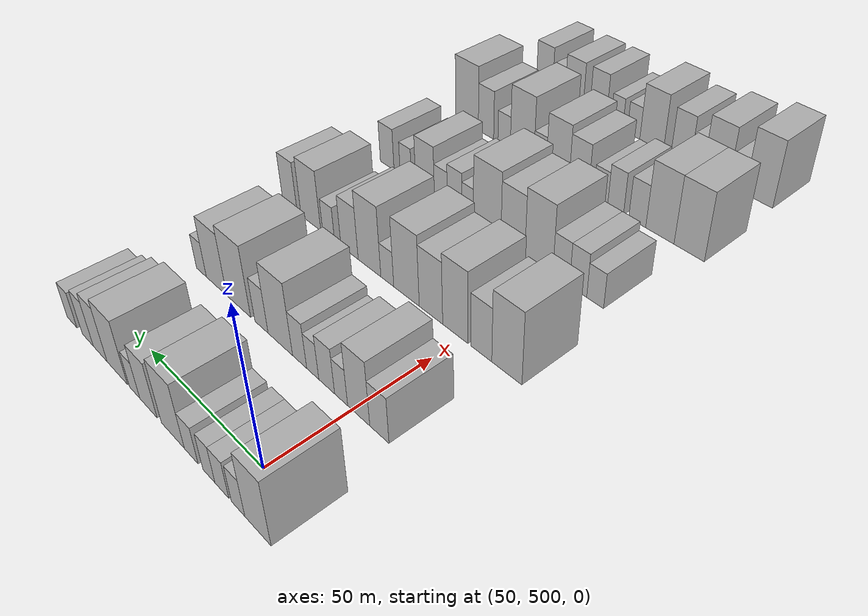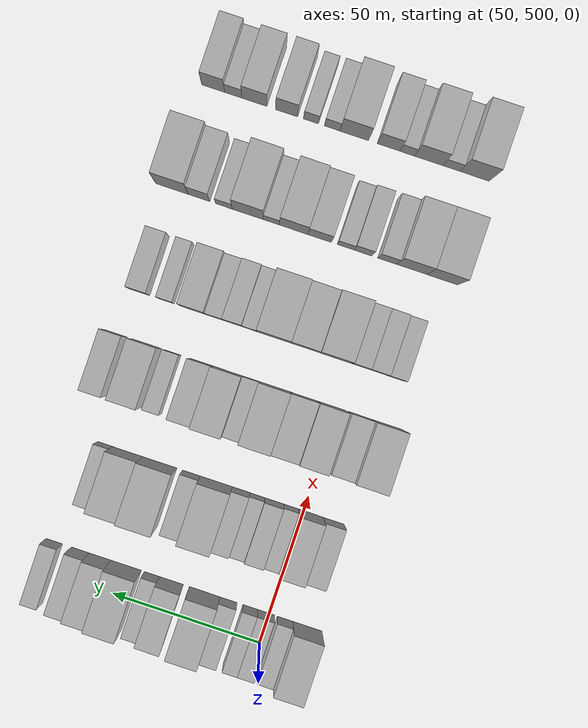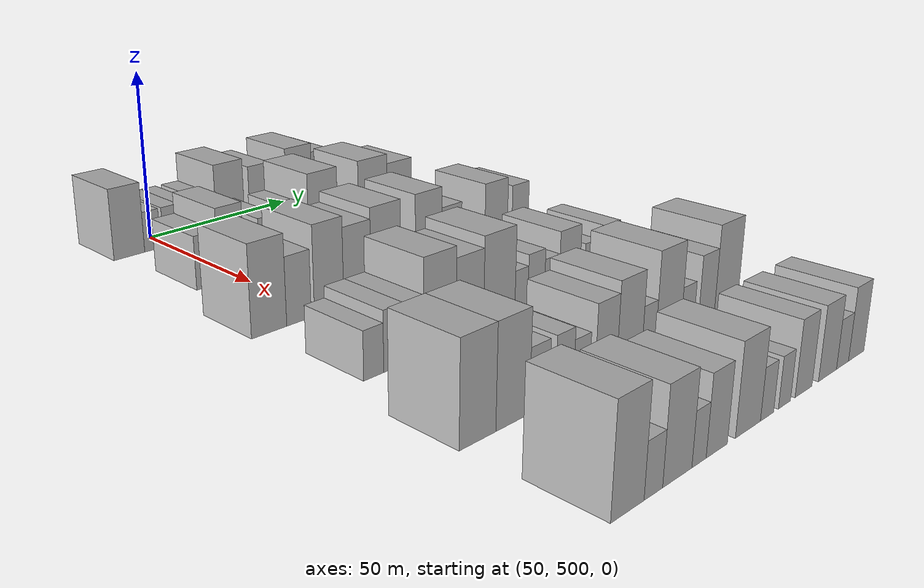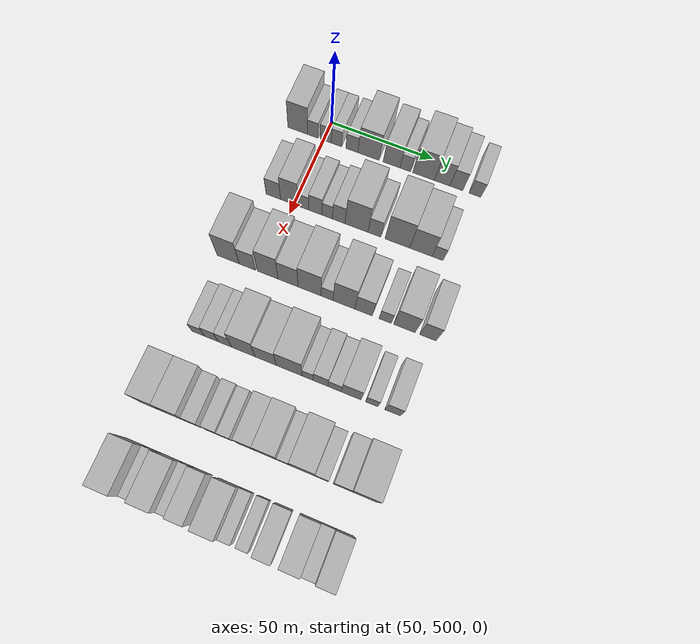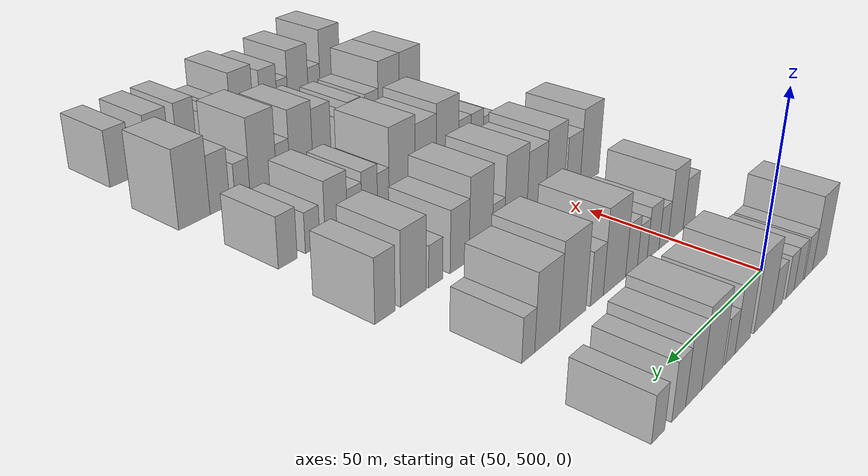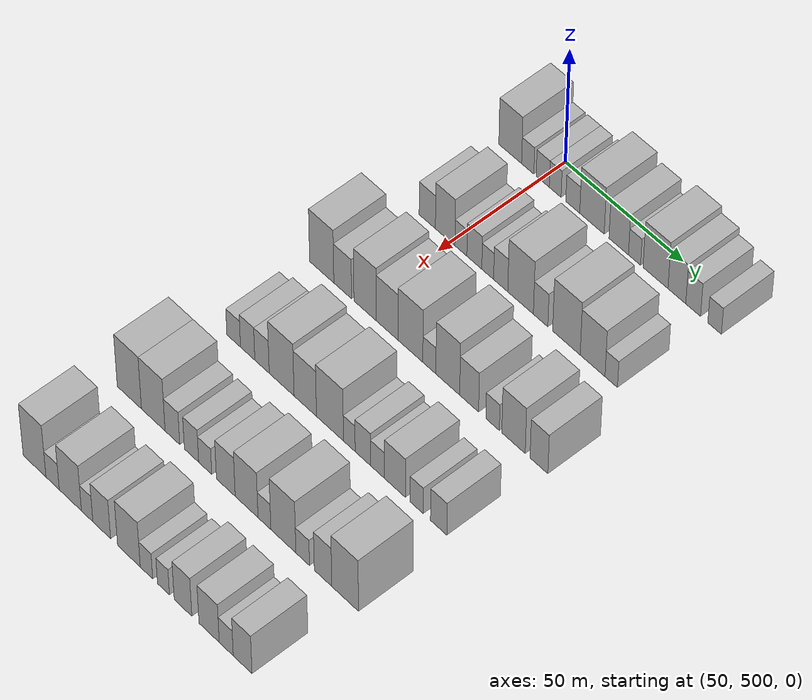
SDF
<sdf version="1.6">
 <world name="default">
  <model name="building_117">
   <static>1</static>
   <pose>50.0000 487.1046 0 0.000000 0.000000 0.000000</pose>
   <link name="link">
    <pose>0 0 10.50 0 0 0</pose>
    <collision name="collision"><geometry><box><size>20.0000 9.8436 21.0000</size></box></geometry></collision>
    <visual name="visual">
     <cast_shadows>0</cast_shadows>
     <geometry><box><size>20.0000 9.8436 21.0000</size></box></geometry>
     <material>
      <script>
       <uri>model://HANNAS_wall/materials/scripts</uri>
       <uri>model://HANNAS_wall/materials/textures</uri>
       <name>vrc/HANNAS_wall</name>
      </script>
     </material>
    </visual>
   </link>
  </model>
  <model name="building_118">
   <static>1</static>
   <pose>50.0000 494.6724 0 0.000000 0.000000 0.000000</pose>
   <link name="link">
    <pose>0 0 6.00 0 0 0</pose>
    <collision name="collision"><geometry><box><size>20.0000 5.2920 12.0000</size></box></geometry></collision>
    <visual name="visual">
     <cast_shadows>0</cast_shadows>
     <geometry><box><size>20.0000 5.2920 12.0000</size></box></geometry>
     <material>
      <script>
       <uri>model://HANNAS_wall/materials/scripts</uri>
       <uri>model://HANNAS_wall/materials/textures</uri>
       <name>vrc/HANNAS_wall</name>
      </script>
     </material>
    </visual>
   </link>
  </model>
  <model name="building_119">
   <static>1</static>
   <pose>50.0000 501.1175 0 0.000000 0.000000 0.000000</pose>
   <link name="link">
    <pose>0 0 6.00 0 0 0</pose>
    <collision name="collision"><geometry><box><size>20.0000 5.5981 12.0000</size></box></geometry></collision>
    <visual name="visual">
     <cast_shadows>0</cast_shadows>
     <geometry><box><size>20.0000 5.5981 12.0000</size></box></geometry>
     <material>
      <script>
       <uri>model://HANNAS_wall/materials/scripts</uri>
       <uri>model://HANNAS_wall/materials/textures</uri>
       <name>vrc/HANNAS_wall</name>
      </script>
     </material>
    </visual>
   </link>
  </model>
  <model name="building_120">
   <static>1</static>
   <pose>50.0000 506.4520 0 0.000000 0.000000 0.000000</pose>
   <link name="link">
    <pose>0 0 6.00 0 0 0</pose>
    <collision name="collision"><geometry><box><size>20.0000 5.0708 12.0000</size></box></geometry></collision>
    <visual name="visual">
     <cast_shadows>0</cast_shadows>
     <geometry><box><size>20.0000 5.0708 12.0000</size></box></geometry>
     <material>
      <script>
       <uri>model://HANNAS_wall/materials/scripts</uri>
       <uri>model://HANNAS_wall/materials/textures</uri>
       <name>vrc/HANNAS_wall</name>
      </script>
     </material>
    </visual>
   </link>
  </model>
  <model name="building_121">
   <static>1</static>
   <pose>50.0000 513.9462 0 0.000000 0.000000 0.000000</pose>
   <link name="link">
    <pose>0 0 6.00 0 0 0</pose>
    <collision name="collision"><geometry><box><size>20.0000 5.9178 12.0000</size></box></geometry></collision>
    <visual name="visual">
     <cast_shadows>0</cast_shadows>
     <geometry><box><size>20.0000 5.9178 12.0000</size></box></geometry>
     <material>
      <script>
       <uri>model://HANNAS_wall/materials/scripts</uri>
       <uri>model://HANNAS_wall/materials/textures</uri>
       <name>vrc/HANNAS_wall</name>
      </script>
     </material>
    </visual>
   </link>
  </model>
  <model name="building_122">
   <static>1</static>
   <pose>50.0000 522.0993 0 0.000000 0.000000 0.000000</pose>
   <link name="link">
    <pose>0 0 10.50 0 0 0</pose>
    <collision name="collision"><geometry><box><size>20.0000 10.3884 21.0000</size></box></geometry></collision>
    <visual name="visual">
     <cast_shadows>0</cast_shadows>
     <geometry><box><size>20.0000 10.3884 21.0000</size></box></geometry>
     <material>
      <script>
       <uri>model://HANNAS_wall/materials/scripts</uri>
       <uri>model://HANNAS_wall/materials/textures</uri>
       <name>vrc/HANNAS_wall</name>
      </script>
     </material>
    </visual>
   </link>
  </model>
  <model name="building_123">
   <static>1</static>
   <pose>50.0000 533.3884 0 0.000000 0.000000 0.000000</pose>
   <link name="link">
    <pose>0 0 9.00 0 0 0</pose>
    <collision name="collision"><geometry><box><size>20.0000 8.1897 18.0000</size></box></geometry></collision>
    <visual name="visual">
     <cast_shadows>0</cast_shadows>
     <geometry><box><size>20.0000 8.1897 18.0000</size></box></geometry>
     <material>
      <script>
       <uri>model://HANNAS_wall/materials/scripts</uri>
       <uri>model://HANNAS_wall/materials/textures</uri>
       <name>vrc/HANNAS_wall</name>
      </script>
     </material>
    </visual>
   </link>
  </model>
  <model name="building_124">
   <static>1</static>
   <pose>50.0000 540.0337 0 0.000000 0.000000 0.000000</pose>
   <link name="link">
    <pose>0 0 6.00 0 0 0</pose>
    <collision name="collision"><geometry><box><size>20.0000 5.1009 12.0000</size></box></geometry></collision>
    <visual name="visual">
     <cast_shadows>0</cast_shadows>
     <geometry><box><size>20.0000 5.1009 12.0000</size></box></geometry>
     <material>
      <script>
       <uri>model://HANNAS_wall/materials/scripts</uri>
       <uri>model://HANNAS_wall/materials/textures</uri>
       <name>vrc/HANNAS_wall</name>
      </script>
     </material>
    </visual>
   </link>
  </model>
  <model name="building_125">
   <static>1</static>
   <pose>50.0000 548.7933 0 0.000000 0.000000 0.000000</pose>
   <link name="link">
    <pose>0 0 10.50 0 0 0</pose>
    <collision name="collision"><geometry><box><size>20.0000 10.4184 21.0000</size></box></geometry></collision>
    <visual name="visual">
     <cast_shadows>0</cast_shadows>
     <geometry><box><size>20.0000 10.4184 21.0000</size></box></geometry>
     <material>
      <script>
       <uri>model://HANNAS_wall/materials/scripts</uri>
       <uri>model://HANNAS_wall/materials/textures</uri>
       <name>vrc/HANNAS_wall</name>
      </script>
     </material>
    </visual>
   </link>
  </model>
  <model name="building_126">
   <static>1</static>
   <pose>50.0000 557.6848 0 0.000000 0.000000 0.000000</pose>
   <link name="link">
    <pose>0 0 9.00 0 0 0</pose>
    <collision name="collision"><geometry><box><size>20.0000 7.3644 18.0000</size></box></geometry></collision>
    <visual name="visual">
     <cast_shadows>0</cast_shadows>
     <geometry><box><size>20.0000 7.3644 18.0000</size></box></geometry>
     <material>
      <script>
       <uri>model://HANNAS_wall/materials/scripts</uri>
       <uri>model://HANNAS_wall/materials/textures</uri>
       <name>vrc/HANNAS_wall</name>
      </script>
     </material>
    </visual>
   </link>
  </model>
  <model name="building_127">
   <static>1</static>
   <pose>50.0000 564.4139 0 0.000000 0.000000 0.000000</pose>
   <link name="link">
    <pose>0 0 7.50 0 0 0</pose>
    <collision name="collision"><geometry><box><size>20.0000 6.0938 15.0000</size></box></geometry></collision>
    <visual name="visual">
     <cast_shadows>0</cast_shadows>
     <geometry><box><size>20.0000 6.0938 15.0000</size></box></geometry>
     <material>
      <script>
       <uri>model://HANNAS_wall/materials/scripts</uri>
       <uri>model://HANNAS_wall/materials/textures</uri>
       <name>vrc/HANNAS_wall</name>
      </script>
     </material>
    </visual>
   </link>
  </model>
  <model name="building_128">
   <static>1</static>
   <pose>50.0000 573.2463 0 0.000000 0.000000 0.000000</pose>
   <link name="link">
    <pose>0 0 6.00 0 0 0</pose>
    <collision name="collision"><geometry><box><size>20.0000 5.5709 12.0000</size></box></geometry></collision>
    <visual name="visual">
     <cast_shadows>0</cast_shadows>
     <geometry><box><size>20.0000 5.5709 12.0000</size></box></geometry>
     <material>
      <script>
       <uri>model://HANNAS_wall/materials/scripts</uri>
       <uri>model://HANNAS_wall/materials/textures</uri>
       <name>vrc/HANNAS_wall</name>
      </script>
     </material>
    </visual>
   </link>
  </model>
  <model name="building_245">
   <static>1</static>
   <pose>85.0000 489.8975 0 0.000000 0.000000 0.000000</pose>
   <link name="link">
    <pose>0 0 7.50 0 0 0</pose>
    <collision name="collision"><geometry><box><size>20.0000 7.0460 15.0000</size></box></geometry></collision>
    <visual name="visual">
     <cast_shadows>0</cast_shadows>
     <geometry><box><size>20.0000 7.0460 15.0000</size></box></geometry>
     <material>
      <script>
       <uri>model://HANNAS_wall/materials/scripts</uri>
       <uri>model://HANNAS_wall/materials/textures</uri>
       <name>vrc/HANNAS_wall</name>
      </script>
     </material>
    </visual>
   </link>
  </model>
  <model name="building_246">
   <static>1</static>
   <pose>85.0000 497.6283 0 0.000000 0.000000 0.000000</pose>
   <link name="link">
    <pose>0 0 10.50 0 0 0</pose>
    <collision name="collision"><geometry><box><size>20.0000 8.4156 21.0000</size></box></geometry></collision>
    <visual name="visual">
     <cast_shadows>0</cast_shadows>
     <geometry><box><size>20.0000 8.4156 21.0000</size></box></geometry>
     <material>
      <script>
       <uri>model://HANNAS_wall/materials/scripts</uri>
       <uri>model://HANNAS_wall/materials/textures</uri>
       <name>vrc/HANNAS_wall</name>
      </script>
     </material>
    </visual>
   </link>
  </model>
  <model name="building_247">
   <static>1</static>
   <pose>85.0000 504.3909 0 0.000000 0.000000 0.000000</pose>
   <link name="link">
    <pose>0 0 6.00 0 0 0</pose>
    <collision name="collision"><geometry><box><size>20.0000 5.1095 12.0000</size></box></geometry></collision>
    <visual name="visual">
     <cast_shadows>0</cast_shadows>
     <geometry><box><size>20.0000 5.1095 12.0000</size></box></geometry>
     <material>
      <script>
       <uri>model://HANNAS_wall/materials/scripts</uri>
       <uri>model://HANNAS_wall/materials/textures</uri>
       <name>vrc/HANNAS_wall</name>
      </script>
     </material>
    </visual>
   </link>
  </model>
  <model name="building_248">
   <static>1</static>
   <pose>85.0000 510.1409 0 0.000000 0.000000 0.000000</pose>
   <link name="link">
    <pose>0 0 7.50 0 0 0</pose>
    <collision name="collision"><geometry><box><size>20.0000 6.3905 15.0000</size></box></geometry></collision>
    <visual name="visual">
     <cast_shadows>0</cast_shadows>
     <geometry><box><size>20.0000 6.3905 15.0000</size></box></geometry>
     <material>
      <script>
       <uri>model://HANNAS_wall/materials/scripts</uri>
       <uri>model://HANNAS_wall/materials/textures</uri>
       <name>vrc/HANNAS_wall</name>
      </script>
     </material>
    </visual>
   </link>
  </model>
  <model name="building_249">
   <static>1</static>
   <pose>85.0000 515.8552 0 0.000000 0.000000 0.000000</pose>
   <link name="link">
    <pose>0 0 6.00 0 0 0</pose>
    <collision name="collision"><geometry><box><size>20.0000 5.0382 12.0000</size></box></geometry></collision>
    <visual name="visual">
     <cast_shadows>0</cast_shadows>
     <geometry><box><size>20.0000 5.0382 12.0000</size></box></geometry>
     <material>
      <script>
       <uri>model://HANNAS_wall/materials/scripts</uri>
       <uri>model://HANNAS_wall/materials/textures</uri>
       <name>vrc/HANNAS_wall</name>
      </script>
     </material>
    </visual>
   </link>
  </model>
  <model name="building_250">
   <static>1</static>
   <pose>85.0000 521.3757 0 0.000000 0.000000 0.000000</pose>
   <link name="link">
    <pose>0 0 7.50 0 0 0</pose>
    <collision name="collision"><geometry><box><size>20.0000 6.0028 15.0000</size></box></geometry></collision>
    <visual name="visual">
     <cast_shadows>0</cast_shadows>
     <geometry><box><size>20.0000 6.0028 15.0000</size></box></geometry>
     <material>
      <script>
       <uri>model://HANNAS_wall/materials/scripts</uri>
       <uri>model://HANNAS_wall/materials/textures</uri>
       <name>vrc/HANNAS_wall</name>
      </script>
     </material>
    </visual>
   </link>
  </model>
  <model name="building_251">
   <static>1</static>
   <pose>85.0000 529.7878 0 0.000000 0.000000 0.000000</pose>
   <link name="link">
    <pose>0 0 12.00 0 0 0</pose>
    <collision name="collision"><geometry><box><size>20.0000 10.8214 24.0000</size></box></geometry></collision>
    <visual name="visual">
     <cast_shadows>0</cast_shadows>
     <geometry><box><size>20.0000 10.8214 24.0000</size></box></geometry>
     <material>
      <script>
       <uri>model://HANNAS_wall/materials/scripts</uri>
       <uri>model://HANNAS_wall/materials/textures</uri>
       <name>vrc/HANNAS_wall</name>
      </script>
     </material>
    </visual>
   </link>
  </model>
  <model name="building_252">
   <static>1</static>
   <pose>85.0000 538.2330 0 0.000000 0.000000 0.000000</pose>
   <link name="link">
    <pose>0 0 7.50 0 0 0</pose>
    <collision name="collision"><geometry><box><size>20.0000 6.0689 15.0000</size></box></geometry></collision>
    <visual name="visual">
     <cast_shadows>0</cast_shadows>
     <geometry><box><size>20.0000 6.0689 15.0000</size></box></geometry>
     <material>
      <script>
       <uri>model://HANNAS_wall/materials/scripts</uri>
       <uri>model://HANNAS_wall/materials/textures</uri>
       <name>vrc/HANNAS_wall</name>
      </script>
     </material>
    </visual>
   </link>
  </model>
  <model name="building_253">
   <static>1</static>
   <pose>85.0000 549.0140 0 0.000000 0.000000 0.000000</pose>
   <link name="link">
    <pose>0 0 12.00 0 0 0</pose>
    <collision name="collision"><geometry><box><size>20.0000 11.4932 24.0000</size></box></geometry></collision>
    <visual name="visual">
     <cast_shadows>0</cast_shadows>
     <geometry><box><size>20.0000 11.4932 24.0000</size></box></geometry>
     <material>
      <script>
       <uri>model://HANNAS_wall/materials/scripts</uri>
       <uri>model://HANNAS_wall/materials/textures</uri>
       <name>vrc/HANNAS_wall</name>
      </script>
     </material>
    </visual>
   </link>
  </model>
  <model name="building_254">
   <static>1</static>
   <pose>85.0000 559.9099 0 0.000000 0.000000 0.000000</pose>
   <link name="link">
    <pose>0 0 10.50 0 0 0</pose>
    <collision name="collision"><geometry><box><size>20.0000 10.2985 21.0000</size></box></geometry></collision>
    <visual name="visual">
     <cast_shadows>0</cast_shadows>
     <geometry><box><size>20.0000 10.2985 21.0000</size></box></geometry>
     <material>
      <script>
       <uri>model://HANNAS_wall/materials/scripts</uri>
       <uri>model://HANNAS_wall/materials/textures</uri>
       <name>vrc/HANNAS_wall</name>
      </script>
     </material>
    </visual>
   </link>
  </model>
  <model name="building_255">
   <static>1</static>
   <pose>85.0000 567.6301 0 0.000000 0.000000 0.000000</pose>
   <link name="link">
    <pose>0 0 6.00 0 0 0</pose>
    <collision name="collision"><geometry><box><size>20.0000 5.1420 12.0000</size></box></geometry></collision>
    <visual name="visual">
     <cast_shadows>0</cast_shadows>
     <geometry><box><size>20.0000 5.1420 12.0000</size></box></geometry>
     <material>
      <script>
       <uri>model://HANNAS_wall/materials/scripts</uri>
       <uri>model://HANNAS_wall/materials/textures</uri>
       <name>vrc/HANNAS_wall</name>
      </script>
     </material>
    </visual>
   </link>
  </model>
  <model name="building_368">
   <static>1</static>
   <pose>120.0000 483.6038 0 0.000000 0.000000 0.000000</pose>
   <link name="link">
    <pose>0 0 12.00 0 0 0</pose>
    <collision name="collision"><geometry><box><size>20.0000 10.5399 24.0000</size></box></geometry></collision>
    <visual name="visual">
     <cast_shadows>0</cast_shadows>
     <geometry><box><size>20.0000 10.5399 24.0000</size></box></geometry>
     <material>
      <script>
       <uri>model://HANNAS_wall/materials/scripts</uri>
       <uri>model://HANNAS_wall/materials/textures</uri>
       <name>vrc/HANNAS_wall</name>
      </script>
     </material>
    </visual>
   </link>
  </model>
  <model name="building_369">
   <static>1</static>
   <pose>120.0000 492.7199 0 0.000000 0.000000 0.000000</pose>
   <link name="link">
    <pose>0 0 9.00 0 0 0</pose>
    <collision name="collision"><geometry><box><size>20.0000 7.6924 18.0000</size></box></geometry></collision>
    <visual name="visual">
     <cast_shadows>0</cast_shadows>
     <geometry><box><size>20.0000 7.6924 18.0000</size></box></geometry>
     <material>
      <script>
       <uri>model://HANNAS_wall/materials/scripts</uri>
       <uri>model://HANNAS_wall/materials/textures</uri>
       <name>vrc/HANNAS_wall</name>
      </script>
     </material>
    </visual>
   </link>
  </model>
  <model name="building_370">
   <static>1</static>
   <pose>120.0000 502.3694 0 0.000000 0.000000 0.000000</pose>
   <link name="link">
    <pose>0 0 12.00 0 0 0</pose>
    <collision name="collision"><geometry><box><size>20.0000 9.6066 24.0000</size></box></geometry></collision>
    <visual name="visual">
     <cast_shadows>0</cast_shadows>
     <geometry><box><size>20.0000 9.6066 24.0000</size></box></geometry>
     <material>
      <script>
       <uri>model://HANNAS_wall/materials/scripts</uri>
       <uri>model://HANNAS_wall/materials/textures</uri>
       <name>vrc/HANNAS_wall</name>
      </script>
     </material>
    </visual>
   </link>
  </model>
  <model name="building_371">
   <static>1</static>
   <pose>120.0000 511.8295 0 0.000000 0.000000 0.000000</pose>
   <link name="link">
    <pose>0 0 10.50 0 0 0</pose>
    <collision name="collision"><geometry><box><size>20.0000 9.3137 21.0000</size></box></geometry></collision>
    <visual name="visual">
     <cast_shadows>0</cast_shadows>
     <geometry><box><size>20.0000 9.3137 21.0000</size></box></geometry>
     <material>
      <script>
       <uri>model://HANNAS_wall/materials/scripts</uri>
       <uri>model://HANNAS_wall/materials/textures</uri>
       <name>vrc/HANNAS_wall</name>
      </script>
     </material>
    </visual>
   </link>
  </model>
  <model name="building_372">
   <static>1</static>
   <pose>120.0000 521.7784 0 0.000000 0.000000 0.000000</pose>
   <link name="link">
    <pose>0 0 12.00 0 0 0</pose>
    <collision name="collision"><geometry><box><size>20.0000 10.5840 24.0000</size></box></geometry></collision>
    <visual name="visual">
     <cast_shadows>0</cast_shadows>
     <geometry><box><size>20.0000 10.5840 24.0000</size></box></geometry>
     <material>
      <script>
       <uri>model://HANNAS_wall/materials/scripts</uri>
       <uri>model://HANNAS_wall/materials/textures</uri>
       <name>vrc/HANNAS_wall</name>
      </script>
     </material>
    </visual>
   </link>
  </model>
  <model name="building_373">
   <static>1</static>
   <pose>120.0000 529.8355 0 0.000000 0.000000 0.000000</pose>
   <link name="link">
    <pose>0 0 6.00 0 0 0</pose>
    <collision name="collision"><geometry><box><size>20.0000 5.5303 12.0000</size></box></geometry></collision>
    <visual name="visual">
     <cast_shadows>0</cast_shadows>
     <geometry><box><size>20.0000 5.5303 12.0000</size></box></geometry>
     <material>
      <script>
       <uri>model://HANNAS_wall/materials/scripts</uri>
       <uri>model://HANNAS_wall/materials/textures</uri>
       <name>vrc/HANNAS_wall</name>
      </script>
     </material>
    </visual>
   </link>
  </model>
  <model name="building_374">
   <static>1</static>
   <pose>120.0000 537.6195 0 0.000000 0.000000 0.000000</pose>
   <link name="link">
    <pose>0 0 12.00 0 0 0</pose>
    <collision name="collision"><geometry><box><size>20.0000 10.0377 24.0000</size></box></geometry></collision>
    <visual name="visual">
     <cast_shadows>0</cast_shadows>
     <geometry><box><size>20.0000 10.0377 24.0000</size></box></geometry>
     <material>
      <script>
       <uri>model://HANNAS_wall/materials/scripts</uri>
       <uri>model://HANNAS_wall/materials/textures</uri>
       <name>vrc/HANNAS_wall</name>
      </script>
     </material>
    </visual>
   </link>
  </model>
  <model name="building_375">
   <static>1</static>
   <pose>120.0000 546.5991 0 0.000000 0.000000 0.000000</pose>
   <link name="link">
    <pose>0 0 9.00 0 0 0</pose>
    <collision name="collision"><geometry><box><size>20.0000 7.9215 18.0000</size></box></geometry></collision>
    <visual name="visual">
     <cast_shadows>0</cast_shadows>
     <geometry><box><size>20.0000 7.9215 18.0000</size></box></geometry>
     <material>
      <script>
       <uri>model://HANNAS_wall/materials/scripts</uri>
       <uri>model://HANNAS_wall/materials/textures</uri>
       <name>vrc/HANNAS_wall</name>
      </script>
     </material>
    </visual>
   </link>
  </model>
  <model name="building_376">
   <static>1</static>
   <pose>120.0000 556.3815 0 0.000000 0.000000 0.000000</pose>
   <link name="link">
    <pose>0 0 6.00 0 0 0</pose>
    <collision name="collision"><geometry><box><size>20.0000 5.6433 12.0000</size></box></geometry></collision>
    <visual name="visual">
     <cast_shadows>0</cast_shadows>
     <geometry><box><size>20.0000 5.6433 12.0000</size></box></geometry>
     <material>
      <script>
       <uri>model://HANNAS_wall/materials/scripts</uri>
       <uri>model://HANNAS_wall/materials/textures</uri>
       <name>vrc/HANNAS_wall</name>
      </script>
     </material>
    </visual>
   </link>
  </model>
  <model name="building_377">
   <static>1</static>
   <pose>120.0000 565.0505 0 0.000000 0.000000 0.000000</pose>
   <link name="link">
    <pose>0 0 10.50 0 0 0</pose>
    <collision name="collision"><geometry><box><size>20.0000 9.6947 21.0000</size></box></geometry></collision>
    <visual name="visual">
     <cast_shadows>0</cast_shadows>
     <geometry><box><size>20.0000 9.6947 21.0000</size></box></geometry>
     <material>
      <script>
       <uri>model://HANNAS_wall/materials/scripts</uri>
       <uri>model://HANNAS_wall/materials/textures</uri>
       <name>vrc/HANNAS_wall</name>
      </script>
     </material>
    </visual>
   </link>
  </model>
  <model name="building_378">
   <static>1</static>
   <pose>120.0000 575.5644 0 0.000000 0.000000 0.000000</pose>
   <link name="link">
    <pose>0 0 9.00 0 0 0</pose>
    <collision name="collision"><geometry><box><size>20.0000 7.3332 18.0000</size></box></geometry></collision>
    <visual name="visual">
     <cast_shadows>0</cast_shadows>
     <geometry><box><size>20.0000 7.3332 18.0000</size></box></geometry>
     <material>
      <script>
       <uri>model://HANNAS_wall/materials/scripts</uri>
       <uri>model://HANNAS_wall/materials/textures</uri>
       <name>vrc/HANNAS_wall</name>
      </script>
     </material>
    </visual>
   </link>
  </model>
  <model name="building_502">
   <static>1</static>
   <pose>155.0000 485.6727 0 0.000000 0.000000 0.000000</pose>
   <link name="link">
    <pose>0 0 6.00 0 0 0</pose>
    <collision name="collision"><geometry><box><size>20.0000 5.9504 12.0000</size></box></geometry></collision>
    <visual name="visual">
     <cast_shadows>0</cast_shadows>
     <geometry><box><size>20.0000 5.9504 12.0000</size></box></geometry>
     <material>
      <script>
       <uri>model://HANNAS_wall/materials/scripts</uri>
       <uri>model://HANNAS_wall/materials/textures</uri>
       <name>vrc/HANNAS_wall</name>
      </script>
     </material>
    </visual>
   </link>
  </model>
  <model name="building_503">
   <static>1</static>
   <pose>155.0000 491.7644 0 0.000000 0.000000 0.000000</pose>
   <link name="link">
    <pose>0 0 7.50 0 0 0</pose>
    <collision name="collision"><geometry><box><size>20.0000 6.2330 15.0000</size></box></geometry></collision>
    <visual name="visual">
     <cast_shadows>0</cast_shadows>
     <geometry><box><size>20.0000 6.2330 15.0000</size></box></geometry>
     <material>
      <script>
       <uri>model://HANNAS_wall/materials/scripts</uri>
       <uri>model://HANNAS_wall/materials/textures</uri>
       <name>vrc/HANNAS_wall</name>
      </script>
     </material>
    </visual>
   </link>
  </model>
  <model name="building_504">
   <static>1</static>
   <pose>155.0000 498.0002 0 0.000000 0.000000 0.000000</pose>
   <link name="link">
    <pose>0 0 7.50 0 0 0</pose>
    <collision name="collision"><geometry><box><size>20.0000 6.2387 15.0000</size></box></geometry></collision>
    <visual name="visual">
     <cast_shadows>0</cast_shadows>
     <geometry><box><size>20.0000 6.2387 15.0000</size></box></geometry>
     <material>
      <script>
       <uri>model://HANNAS_wall/materials/scripts</uri>
       <uri>model://HANNAS_wall/materials/textures</uri>
       <name>vrc/HANNAS_wall</name>
      </script>
     </material>
    </visual>
   </link>
  </model>
  <model name="building_505">
   <static>1</static>
   <pose>155.0000 506.4825 0 0.000000 0.000000 0.000000</pose>
   <link name="link">
    <pose>0 0 12.00 0 0 0</pose>
    <collision name="collision"><geometry><box><size>20.0000 10.7259 24.0000</size></box></geometry></collision>
    <visual name="visual">
     <cast_shadows>0</cast_shadows>
     <geometry><box><size>20.0000 10.7259 24.0000</size></box></geometry>
     <material>
      <script>
       <uri>model://HANNAS_wall/materials/scripts</uri>
       <uri>model://HANNAS_wall/materials/textures</uri>
       <name>vrc/HANNAS_wall</name>
      </script>
     </material>
    </visual>
   </link>
  </model>
  <model name="building_506">
   <static>1</static>
   <pose>155.0000 516.6370 0 0.000000 0.000000 0.000000</pose>
   <link name="link">
    <pose>0 0 10.50 0 0 0</pose>
    <collision name="collision"><geometry><box><size>20.0000 9.5830 21.0000</size></box></geometry></collision>
    <visual name="visual">
     <cast_shadows>0</cast_shadows>
     <geometry><box><size>20.0000 9.5830 21.0000</size></box></geometry>
     <material>
      <script>
       <uri>model://HANNAS_wall/materials/scripts</uri>
       <uri>model://HANNAS_wall/materials/textures</uri>
       <name>vrc/HANNAS_wall</name>
      </script>
     </material>
    </visual>
   </link>
  </model>
  <model name="building_507">
   <static>1</static>
   <pose>155.0000 527.1683 0 0.000000 0.000000 0.000000</pose>
   <link name="link">
    <pose>0 0 12.00 0 0 0</pose>
    <collision name="collision"><geometry><box><size>20.0000 11.4797 24.0000</size></box></geometry></collision>
    <visual name="visual">
     <cast_shadows>0</cast_shadows>
     <geometry><box><size>20.0000 11.4797 24.0000</size></box></geometry>
     <material>
      <script>
       <uri>model://HANNAS_wall/materials/scripts</uri>
       <uri>model://HANNAS_wall/materials/textures</uri>
       <name>vrc/HANNAS_wall</name>
      </script>
     </material>
    </visual>
   </link>
  </model>
  <model name="building_508">
   <static>1</static>
   <pose>155.0000 535.3751 0 0.000000 0.000000 0.000000</pose>
   <link name="link">
    <pose>0 0 6.00 0 0 0</pose>
    <collision name="collision"><geometry><box><size>20.0000 4.9338 12.0000</size></box></geometry></collision>
    <visual name="visual">
     <cast_shadows>0</cast_shadows>
     <geometry><box><size>20.0000 4.9338 12.0000</size></box></geometry>
     <material>
      <script>
       <uri>model://HANNAS_wall/materials/scripts</uri>
       <uri>model://HANNAS_wall/materials/textures</uri>
       <name>vrc/HANNAS_wall</name>
      </script>
     </material>
    </visual>
   </link>
  </model>
  <model name="building_509">
   <static>1</static>
   <pose>155.0000 541.0912 0 0.000000 0.000000 0.000000</pose>
   <link name="link">
    <pose>0 0 7.50 0 0 0</pose>
    <collision name="collision"><geometry><box><size>20.0000 6.4983 15.0000</size></box></geometry></collision>
    <visual name="visual">
     <cast_shadows>0</cast_shadows>
     <geometry><box><size>20.0000 6.4983 15.0000</size></box></geometry>
     <material>
      <script>
       <uri>model://HANNAS_wall/materials/scripts</uri>
       <uri>model://HANNAS_wall/materials/textures</uri>
       <name>vrc/HANNAS_wall</name>
      </script>
     </material>
    </visual>
   </link>
  </model>
  <model name="building_510">
   <static>1</static>
   <pose>155.0000 547.2808 0 0.000000 0.000000 0.000000</pose>
   <link name="link">
    <pose>0 0 6.00 0 0 0</pose>
    <collision name="collision"><geometry><box><size>20.0000 5.8811 12.0000</size></box></geometry></collision>
    <visual name="visual">
     <cast_shadows>0</cast_shadows>
     <geometry><box><size>20.0000 5.8811 12.0000</size></box></geometry>
     <material>
      <script>
       <uri>model://HANNAS_wall/materials/scripts</uri>
       <uri>model://HANNAS_wall/materials/textures</uri>
       <name>vrc/HANNAS_wall</name>
      </script>
     </material>
    </visual>
   </link>
  </model>
  <model name="building_511">
   <static>1</static>
   <pose>155.0000 554.5634 0 0.000000 0.000000 0.000000</pose>
   <link name="link">
    <pose>0 0 9.00 0 0 0</pose>
    <collision name="collision"><geometry><box><size>20.0000 8.6840 18.0000</size></box></geometry></collision>
    <visual name="visual">
     <cast_shadows>0</cast_shadows>
     <geometry><box><size>20.0000 8.6840 18.0000</size></box></geometry>
     <material>
      <script>
       <uri>model://HANNAS_wall/materials/scripts</uri>
       <uri>model://HANNAS_wall/materials/textures</uri>
       <name>vrc/HANNAS_wall</name>
      </script>
     </material>
    </visual>
   </link>
  </model>
  <model name="building_512">
   <static>1</static>
   <pose>155.0000 563.6130 0 0.000000 0.000000 0.000000</pose>
   <link name="link">
    <pose>0 0 6.00 0 0 0</pose>
    <collision name="collision"><geometry><box><size>20.0000 5.4152 12.0000</size></box></geometry></collision>
    <visual name="visual">
     <cast_shadows>0</cast_shadows>
     <geometry><box><size>20.0000 5.4152 12.0000</size></box></geometry>
     <material>
      <script>
       <uri>model://HANNAS_wall/materials/scripts</uri>
       <uri>model://HANNAS_wall/materials/textures</uri>
       <name>vrc/HANNAS_wall</name>
      </script>
     </material>
    </visual>
   </link>
  </model>
  <model name="building_513">
   <static>1</static>
   <pose>155.0000 572.7057 0 0.000000 0.000000 0.000000</pose>
   <link name="link">
    <pose>0 0 7.50 0 0 0</pose>
    <collision name="collision"><geometry><box><size>20.0000 6.7703 15.0000</size></box></geometry></collision>
    <visual name="visual">
     <cast_shadows>0</cast_shadows>
     <geometry><box><size>20.0000 6.7703 15.0000</size></box></geometry>
     <material>
      <script>
       <uri>model://HANNAS_wall/materials/scripts</uri>
       <uri>model://HANNAS_wall/materials/textures</uri>
       <name>vrc/HANNAS_wall</name>
      </script>
     </material>
    </visual>
   </link>
  </model>
  <model name="building_625">
   <static>1</static>
   <pose>190.0000 481.4456 0 0.000000 0.000000 0.000000</pose>
   <link name="link">
    <pose>0 0 12.00 0 0 0</pose>
    <collision name="collision"><geometry><box><size>20.0000 10.6043 24.0000</size></box></geometry></collision>
    <visual name="visual">
     <cast_shadows>0</cast_shadows>
     <geometry><box><size>20.0000 10.6043 24.0000</size></box></geometry>
     <material>
      <script>
       <uri>model://HANNAS_wall/materials/scripts</uri>
       <uri>model://HANNAS_wall/materials/textures</uri>
       <name>vrc/HANNAS_wall</name>
      </script>
     </material>
    </visual>
   </link>
  </model>
  <model name="building_626">
   <static>1</static>
   <pose>190.0000 491.9057 0 0.000000 0.000000 0.000000</pose>
   <link name="link">
    <pose>0 0 12.00 0 0 0</pose>
    <collision name="collision"><geometry><box><size>20.0000 10.3158 24.0000</size></box></geometry></collision>
    <visual name="visual">
     <cast_shadows>0</cast_shadows>
     <geometry><box><size>20.0000 10.3158 24.0000</size></box></geometry>
     <material>
      <script>
       <uri>model://HANNAS_wall/materials/scripts</uri>
       <uri>model://HANNAS_wall/materials/textures</uri>
       <name>vrc/HANNAS_wall</name>
      </script>
     </material>
    </visual>
   </link>
  </model>
  <model name="building_627">
   <static>1</static>
   <pose>190.0000 500.2446 0 0.000000 0.000000 0.000000</pose>
   <link name="link">
    <pose>0 0 7.50 0 0 0</pose>
    <collision name="collision"><geometry><box><size>20.0000 6.3620 15.0000</size></box></geometry></collision>
    <visual name="visual">
     <cast_shadows>0</cast_shadows>
     <geometry><box><size>20.0000 6.3620 15.0000</size></box></geometry>
     <material>
      <script>
       <uri>model://HANNAS_wall/materials/scripts</uri>
       <uri>model://HANNAS_wall/materials/textures</uri>
       <name>vrc/HANNAS_wall</name>
      </script>
     </material>
    </visual>
   </link>
  </model>
  <model name="building_628">
   <static>1</static>
   <pose>190.0000 508.5071 0 0.000000 0.000000 0.000000</pose>
   <link name="link">
    <pose>0 0 7.50 0 0 0</pose>
    <collision name="collision"><geometry><box><size>20.0000 6.1631 15.0000</size></box></geometry></collision>
    <visual name="visual">
     <cast_shadows>0</cast_shadows>
     <geometry><box><size>20.0000 6.1631 15.0000</size></box></geometry>
     <material>
      <script>
       <uri>model://HANNAS_wall/materials/scripts</uri>
       <uri>model://HANNAS_wall/materials/textures</uri>
       <name>vrc/HANNAS_wall</name>
      </script>
     </material>
    </visual>
   </link>
  </model>
  <model name="building_629">
   <static>1</static>
   <pose>190.0000 514.4066 0 0.000000 0.000000 0.000000</pose>
   <link name="link">
    <pose>0 0 6.00 0 0 0</pose>
    <collision name="collision"><geometry><box><size>20.0000 5.6360 12.0000</size></box></geometry></collision>
    <visual name="visual">
     <cast_shadows>0</cast_shadows>
     <geometry><box><size>20.0000 5.6360 12.0000</size></box></geometry>
     <material>
      <script>
       <uri>model://HANNAS_wall/materials/scripts</uri>
       <uri>model://HANNAS_wall/materials/textures</uri>
       <name>vrc/HANNAS_wall</name>
      </script>
     </material>
    </visual>
   </link>
  </model>
  <model name="building_630">
   <static>1</static>
   <pose>190.0000 523.2417 0 0.000000 0.000000 0.000000</pose>
   <link name="link">
    <pose>0 0 9.00 0 0 0</pose>
    <collision name="collision"><geometry><box><size>20.0000 8.0342 18.0000</size></box></geometry></collision>
    <visual name="visual">
     <cast_shadows>0</cast_shadows>
     <geometry><box><size>20.0000 8.0342 18.0000</size></box></geometry>
     <material>
      <script>
       <uri>model://HANNAS_wall/materials/scripts</uri>
       <uri>model://HANNAS_wall/materials/textures</uri>
       <name>vrc/HANNAS_wall</name>
      </script>
     </material>
    </visual>
   </link>
  </model>
  <model name="building_631">
   <static>1</static>
   <pose>190.0000 532.1004 0 0.000000 0.000000 0.000000</pose>
   <link name="link">
    <pose>0 0 10.50 0 0 0</pose>
    <collision name="collision"><geometry><box><size>20.0000 9.6832 21.0000</size></box></geometry></collision>
    <visual name="visual">
     <cast_shadows>0</cast_shadows>
     <geometry><box><size>20.0000 9.6832 21.0000</size></box></geometry>
     <material>
      <script>
       <uri>model://HANNAS_wall/materials/scripts</uri>
       <uri>model://HANNAS_wall/materials/textures</uri>
       <name>vrc/HANNAS_wall</name>
      </script>
     </material>
    </visual>
   </link>
  </model>
  <model name="building_632">
   <static>1</static>
   <pose>190.0000 539.6585 0 0.000000 0.000000 0.000000</pose>
   <link name="link">
    <pose>0 0 6.00 0 0 0</pose>
    <collision name="collision"><geometry><box><size>20.0000 5.4331 12.0000</size></box></geometry></collision>
    <visual name="visual">
     <cast_shadows>0</cast_shadows>
     <geometry><box><size>20.0000 5.4331 12.0000</size></box></geometry>
     <material>
      <script>
       <uri>model://HANNAS_wall/materials/scripts</uri>
       <uri>model://HANNAS_wall/materials/textures</uri>
       <name>vrc/HANNAS_wall</name>
      </script>
     </material>
    </visual>
   </link>
  </model>
  <model name="building_633">
   <static>1</static>
   <pose>190.0000 547.6445 0 0.000000 0.000000 0.000000</pose>
   <link name="link">
    <pose>0 0 12.00 0 0 0</pose>
    <collision name="collision"><geometry><box><size>20.0000 10.5389 24.0000</size></box></geometry></collision>
    <visual name="visual">
     <cast_shadows>0</cast_shadows>
     <geometry><box><size>20.0000 10.5389 24.0000</size></box></geometry>
     <material>
      <script>
       <uri>model://HANNAS_wall/materials/scripts</uri>
       <uri>model://HANNAS_wall/materials/textures</uri>
       <name>vrc/HANNAS_wall</name>
      </script>
     </material>
    </visual>
   </link>
  </model>
  <model name="building_634">
   <static>1</static>
   <pose>190.0000 555.7647 0 0.000000 0.000000 0.000000</pose>
   <link name="link">
    <pose>0 0 6.00 0 0 0</pose>
    <collision name="collision"><geometry><box><size>20.0000 5.7015 12.0000</size></box></geometry></collision>
    <visual name="visual">
     <cast_shadows>0</cast_shadows>
     <geometry><box><size>20.0000 5.7015 12.0000</size></box></geometry>
     <material>
      <script>
       <uri>model://HANNAS_wall/materials/scripts</uri>
       <uri>model://HANNAS_wall/materials/textures</uri>
       <name>vrc/HANNAS_wall</name>
      </script>
     </material>
    </visual>
   </link>
  </model>
  <model name="building_635">
   <static>1</static>
   <pose>190.0000 564.2546 0 0.000000 0.000000 0.000000</pose>
   <link name="link">
    <pose>0 0 9.00 0 0 0</pose>
    <collision name="collision"><geometry><box><size>20.0000 7.2783 18.0000</size></box></geometry></collision>
    <visual name="visual">
     <cast_shadows>0</cast_shadows>
     <geometry><box><size>20.0000 7.2783 18.0000</size></box></geometry>
     <material>
      <script>
       <uri>model://HANNAS_wall/materials/scripts</uri>
       <uri>model://HANNAS_wall/materials/textures</uri>
       <name>vrc/HANNAS_wall</name>
      </script>
     </material>
    </visual>
   </link>
  </model>
  <model name="building_636">
   <static>1</static>
   <pose>190.0000 573.4283 0 0.000000 0.000000 0.000000</pose>
   <link name="link">
    <pose>0 0 12.00 0 0 0</pose>
    <collision name="collision"><geometry><box><size>20.0000 11.0689 24.0000</size></box></geometry></collision>
    <visual name="visual">
     <cast_shadows>0</cast_shadows>
     <geometry><box><size>20.0000 11.0689 24.0000</size></box></geometry>
     <material>
      <script>
       <uri>model://HANNAS_wall/materials/scripts</uri>
       <uri>model://HANNAS_wall/materials/textures</uri>
       <name>vrc/HANNAS_wall</name>
      </script>
     </material>
    </visual>
   </link>
  </model>
  <model name="building_759">
   <static>1</static>
   <pose>225.0000 482.2111 0 0.000000 0.000000 0.000000</pose>
   <link name="link">
    <pose>0 0 12.00 0 0 0</pose>
    <collision name="collision"><geometry><box><size>20.0000 10.0113 24.0000</size></box></geometry></collision>
    <visual name="visual">
     <cast_shadows>0</cast_shadows>
     <geometry><box><size>20.0000 10.0113 24.0000</size></box></geometry>
     <material>
      <script>
       <uri>model://HANNAS_wall/materials/scripts</uri>
       <uri>model://HANNAS_wall/materials/textures</uri>
       <name>vrc/HANNAS_wall</name>
      </script>
     </material>
    </visual>
   </link>
  </model>
  <model name="building_760">
   <static>1</static>
   <pose>225.0000 490.1365 0 0.000000 0.000000 0.000000</pose>
   <link name="link">
    <pose>0 0 6.00 0 0 0</pose>
    <collision name="collision"><geometry><box><size>20.0000 5.8395 12.0000</size></box></geometry></collision>
    <visual name="visual">
     <cast_shadows>0</cast_shadows>
     <geometry><box><size>20.0000 5.8395 12.0000</size></box></geometry>
     <material>
      <script>
       <uri>model://HANNAS_wall/materials/scripts</uri>
       <uri>model://HANNAS_wall/materials/textures</uri>
       <name>vrc/HANNAS_wall</name>
      </script>
     </material>
    </visual>
   </link>
  </model>
  <model name="building_761">
   <static>1</static>
   <pose>225.0000 497.8938 0 0.000000 0.000000 0.000000</pose>
   <link name="link">
    <pose>0 0 10.50 0 0 0</pose>
    <collision name="collision"><geometry><box><size>20.0000 9.6751 21.0000</size></box></geometry></collision>
    <visual name="visual">
     <cast_shadows>0</cast_shadows>
     <geometry><box><size>20.0000 9.6751 21.0000</size></box></geometry>
     <material>
      <script>
       <uri>model://HANNAS_wall/materials/scripts</uri>
       <uri>model://HANNAS_wall/materials/textures</uri>
       <name>vrc/HANNAS_wall</name>
      </script>
     </material>
    </visual>
   </link>
  </model>
  <model name="building_762">
   <static>1</static>
   <pose>225.0000 505.2041 0 0.000000 0.000000 0.000000</pose>
   <link name="link">
    <pose>0 0 6.00 0 0 0</pose>
    <collision name="collision"><geometry><box><size>20.0000 4.9455 12.0000</size></box></geometry></collision>
    <visual name="visual">
     <cast_shadows>0</cast_shadows>
     <geometry><box><size>20.0000 4.9455 12.0000</size></box></geometry>
     <material>
      <script>
       <uri>model://HANNAS_wall/materials/scripts</uri>
       <uri>model://HANNAS_wall/materials/textures</uri>
       <name>vrc/HANNAS_wall</name>
      </script>
     </material>
    </visual>
   </link>
  </model>
  <model name="building_763">
   <static>1</static>
   <pose>225.0000 511.5100 0 0.000000 0.000000 0.000000</pose>
   <link name="link">
    <pose>0 0 9.00 0 0 0</pose>
    <collision name="collision"><geometry><box><size>20.0000 7.6663 18.0000</size></box></geometry></collision>
    <visual name="visual">
     <cast_shadows>0</cast_shadows>
     <geometry><box><size>20.0000 7.6663 18.0000</size></box></geometry>
     <material>
      <script>
       <uri>model://HANNAS_wall/materials/scripts</uri>
       <uri>model://HANNAS_wall/materials/textures</uri>
       <name>vrc/HANNAS_wall</name>
      </script>
     </material>
    </visual>
   </link>
  </model>
  <model name="building_764">
   <static>1</static>
   <pose>225.0000 523.2023 0 0.000000 0.000000 0.000000</pose>
   <link name="link">
    <pose>0 0 10.50 0 0 0</pose>
    <collision name="collision"><geometry><box><size>20.0000 9.7183 21.0000</size></box></geometry></collision>
    <visual name="visual">
     <cast_shadows>0</cast_shadows>
     <geometry><box><size>20.0000 9.7183 21.0000</size></box></geometry>
     <material>
      <script>
       <uri>model://HANNAS_wall/materials/scripts</uri>
       <uri>model://HANNAS_wall/materials/textures</uri>
       <name>vrc/HANNAS_wall</name>
      </script>
     </material>
    </visual>
   </link>
  </model>
  <model name="building_765">
   <static>1</static>
   <pose>225.0000 530.7243 0 0.000000 0.000000 0.000000</pose>
   <link name="link">
    <pose>0 0 6.00 0 0 0</pose>
    <collision name="collision"><geometry><box><size>20.0000 5.3256 12.0000</size></box></geometry></collision>
    <visual name="visual">
     <cast_shadows>0</cast_shadows>
     <geometry><box><size>20.0000 5.3256 12.0000</size></box></geometry>
     <material>
      <script>
       <uri>model://HANNAS_wall/materials/scripts</uri>
       <uri>model://HANNAS_wall/materials/textures</uri>
       <name>vrc/HANNAS_wall</name>
      </script>
     </material>
    </visual>
   </link>
  </model>
  <model name="building_766">
   <static>1</static>
   <pose>225.0000 537.9456 0 0.000000 0.000000 0.000000</pose>
   <link name="link">
    <pose>0 0 6.00 0 0 0</pose>
    <collision name="collision"><geometry><box><size>20.0000 5.1170 12.0000</size></box></geometry></collision>
    <visual name="visual">
     <cast_shadows>0</cast_shadows>
     <geometry><box><size>20.0000 5.1170 12.0000</size></box></geometry>
     <material>
      <script>
       <uri>model://HANNAS_wall/materials/scripts</uri>
       <uri>model://HANNAS_wall/materials/textures</uri>
       <name>vrc/HANNAS_wall</name>
      </script>
     </material>
    </visual>
   </link>
  </model>
  <model name="building_767">
   <static>1</static>
   <pose>225.0000 546.2350 0 0.000000 0.000000 0.000000</pose>
   <link name="link">
    <pose>0 0 9.00 0 0 0</pose>
    <collision name="collision"><geometry><box><size>20.0000 7.4619 18.0000</size></box></geometry></collision>
    <visual name="visual">
     <cast_shadows>0</cast_shadows>
     <geometry><box><size>20.0000 7.4619 18.0000</size></box></geometry>
     <material>
      <script>
       <uri>model://HANNAS_wall/materials/scripts</uri>
       <uri>model://HANNAS_wall/materials/textures</uri>
       <name>vrc/HANNAS_wall</name>
      </script>
     </material>
    </visual>
   </link>
  </model>
  <model name="building_768">
   <static>1</static>
   <pose>225.0000 557.2106 0 0.000000 0.000000 0.000000</pose>
   <link name="link">
    <pose>0 0 9.00 0 0 0</pose>
    <collision name="collision"><geometry><box><size>20.0000 8.4892 18.0000</size></box></geometry></collision>
    <visual name="visual">
     <cast_shadows>0</cast_shadows>
     <geometry><box><size>20.0000 8.4892 18.0000</size></box></geometry>
     <material>
      <script>
       <uri>model://HANNAS_wall/materials/scripts</uri>
       <uri>model://HANNAS_wall/materials/textures</uri>
       <name>vrc/HANNAS_wall</name>
      </script>
     </material>
    </visual>
   </link>
  </model>
  <model name="building_769">
   <static>1</static>
   <pose>225.0000 564.3917 0 0.000000 0.000000 0.000000</pose>
   <link name="link">
    <pose>0 0 6.00 0 0 0</pose>
    <collision name="collision"><geometry><box><size>20.0000 5.8729 12.0000</size></box></geometry></collision>
    <visual name="visual">
     <cast_shadows>0</cast_shadows>
     <geometry><box><size>20.0000 5.8729 12.0000</size></box></geometry>
     <material>
      <script>
       <uri>model://HANNAS_wall/materials/scripts</uri>
       <uri>model://HANNAS_wall/materials/textures</uri>
       <name>vrc/HANNAS_wall</name>
      </script>
     </material>
    </visual>
   </link>
  </model>
  <model name="building_770">
   <static>1</static>
   <pose>225.0000 571.2263 0 0.000000 0.000000 0.000000</pose>
   <link name="link">
    <pose>0 0 9.00 0 0 0</pose>
    <collision name="collision"><geometry><box><size>20.0000 7.7963 18.0000</size></box></geometry></collision>
    <visual name="visual">
     <cast_shadows>0</cast_shadows>
     <geometry><box><size>20.0000 7.7963 18.0000</size></box></geometry>
     <material>
      <script>
       <uri>model://HANNAS_wall/materials/scripts</uri>
       <uri>model://HANNAS_wall/materials/textures</uri>
       <name>vrc/HANNAS_wall</name>
      </script>
     </material>
    </visual>
   </link>
  </model>
 </world>
</sdf>
